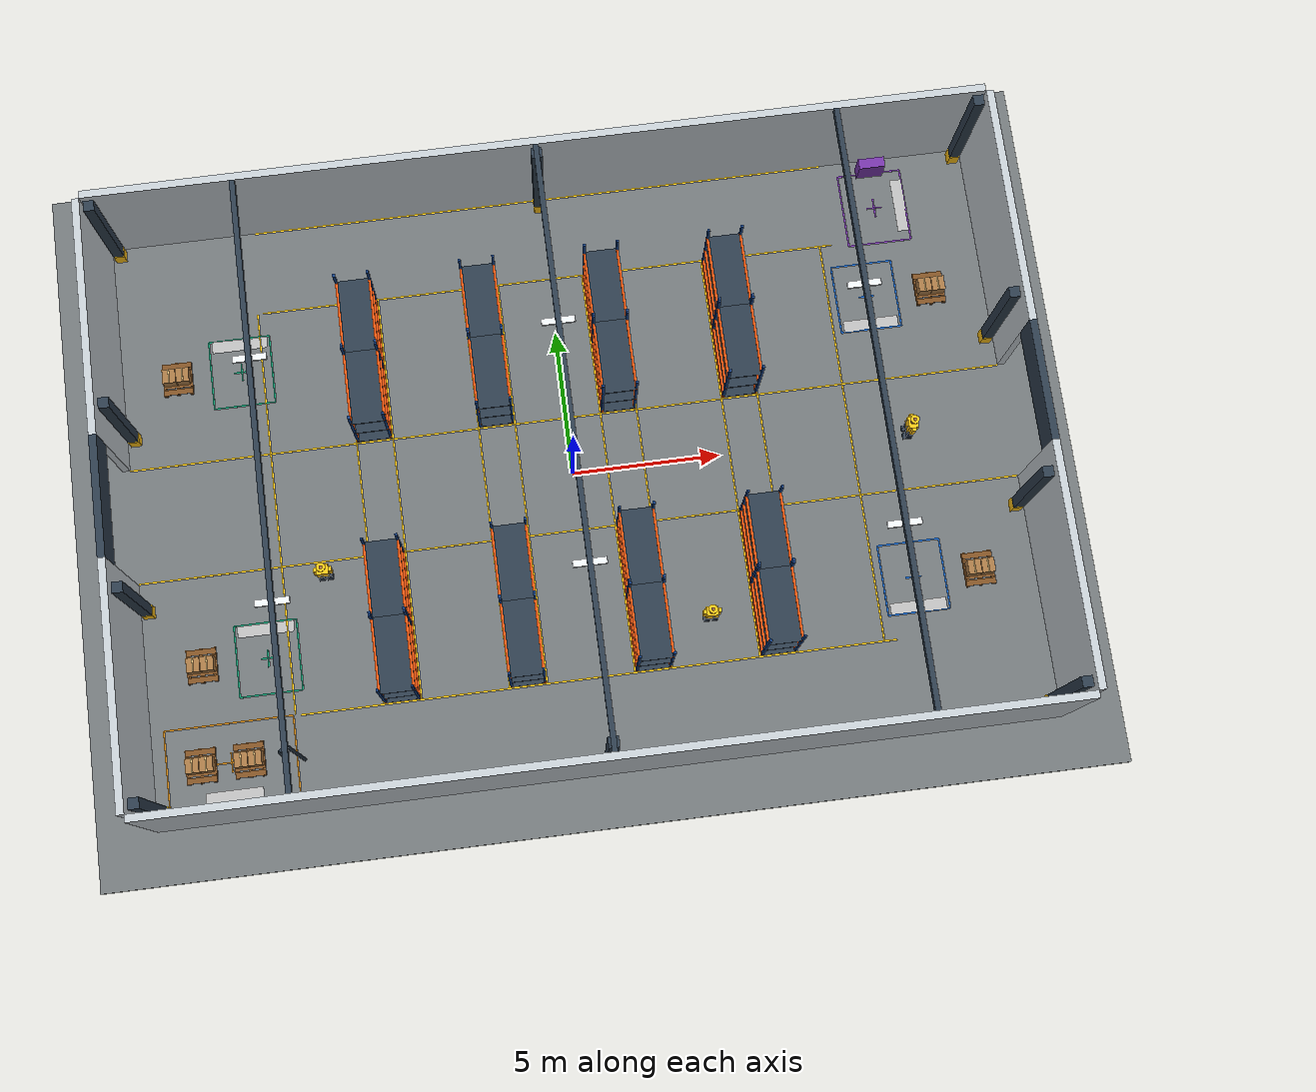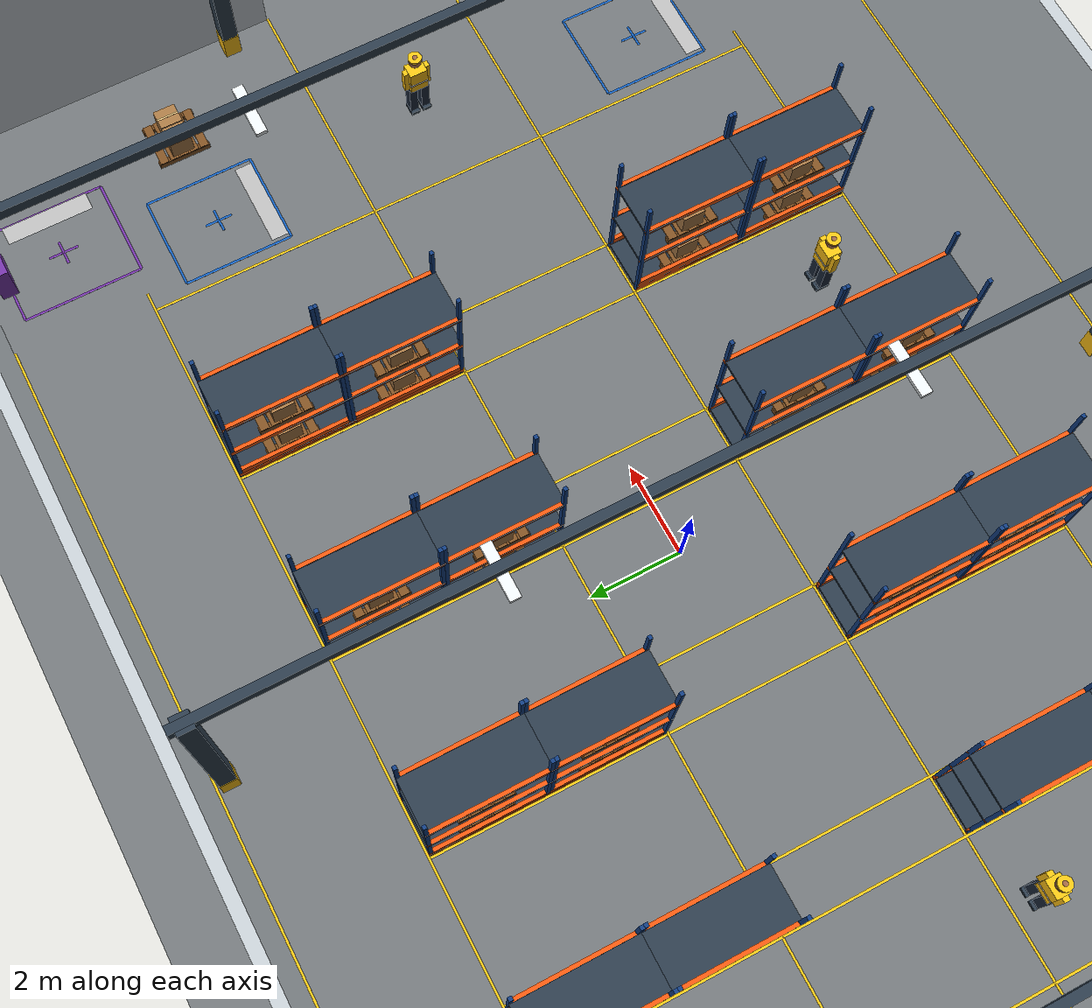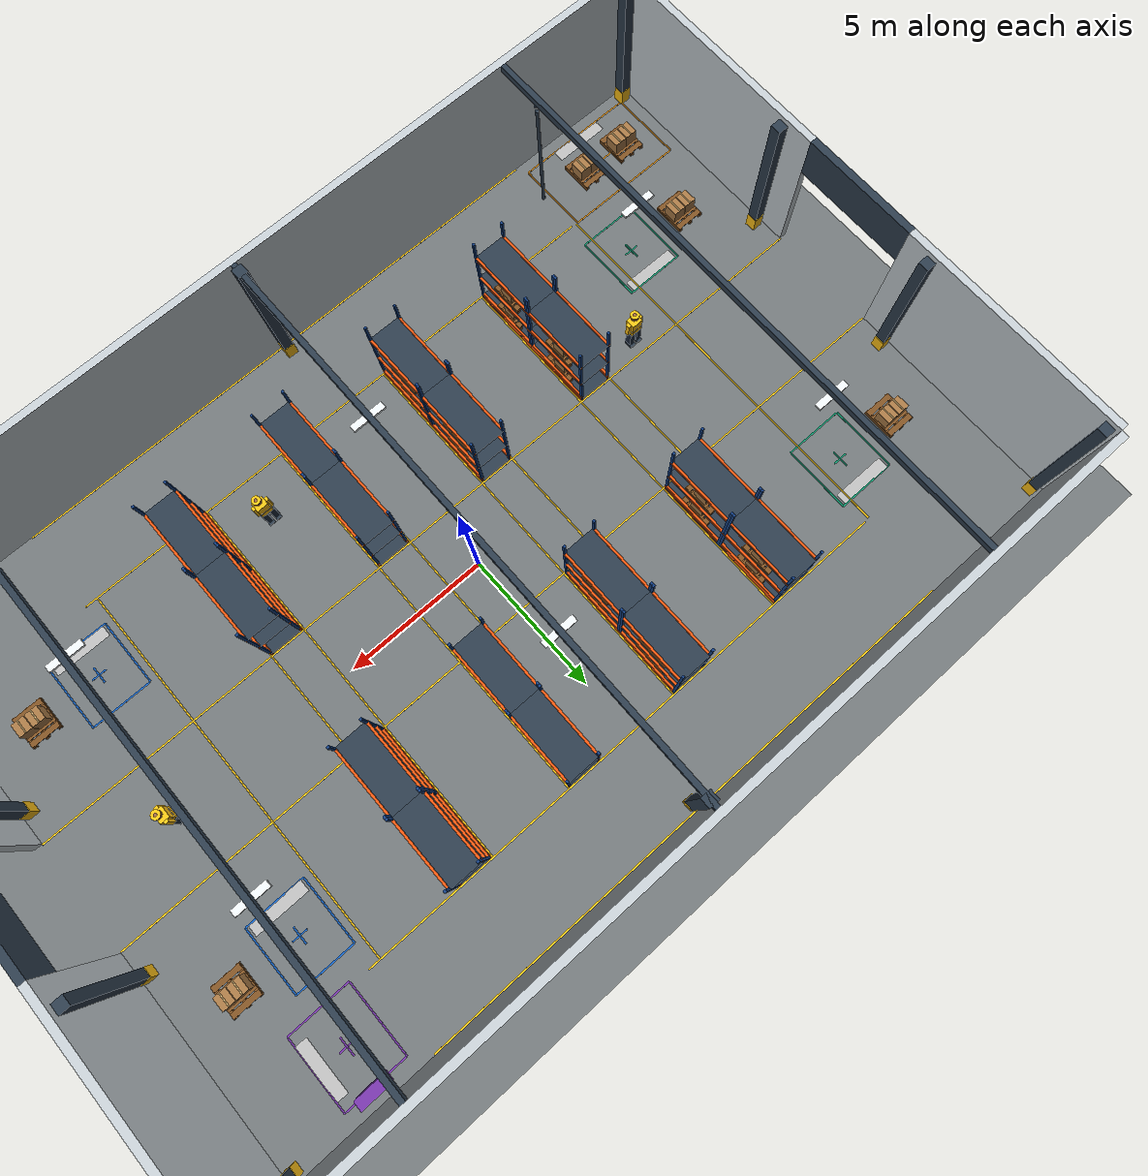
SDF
<?xml version="1.0"?>
<sdf version="1.9">
  <world name="warehouse">
    <gravity>0 0 -9.81</gravity>
    <physics name="physics" type="ignored">
      <max_step_size>0.001</max_step_size>
      <real_time_factor>1</real_time_factor>
    </physics>
    <plugin filename="gz-sim-physics-system" name="gz::sim::systems::Physics" />
    <plugin filename="gz-sim-user-commands-system" name="gz::sim::systems::UserCommands" />
    <plugin filename="gz-sim-scene-broadcaster-system" name="gz::sim::systems::SceneBroadcaster" />
    <plugin filename="gz-sim-sensors-system" name="gz::sim::systems::Sensors">
      <render_engine>ogre2</render_engine>
    </plugin>
    <plugin filename="gz-sim-imu-system" name="gz::sim::systems::Imu" />
    <plugin filename="gz-sim-contact-system" name="gz::sim::systems::Contact" />
    <scene>
      <ambient>0.42 0.43 0.45 1</ambient>
      <background>0.17 0.21 0.26 1</background>
      <shadows>true</shadows>
    </scene>
    <light name="daylight" type="directional">
      <pose>0 0 10 0 0 0</pose>
      <direction>-0.4 0.2 -1</direction>
      <diffuse>0.65 0.63 0.59 1</diffuse>
      <specular>0.1 0.1 0.1 1</specular>
      <cast_shadows>true</cast_shadows>
    </light>
    <light name="overhead_0" type="point">
      <pose>-10 -4 4.65 0 0 0</pose>
      <diffuse>0.55 0.57 0.6 1</diffuse>
      <cast_shadows>false</cast_shadows>
      <attenuation>
        <range>11</range>
        <constant>1</constant>
        <linear>0.035</linear>
        <quadratic>0.012</quadratic>
      </attenuation>
    </light>
    <light name="overhead_1" type="point">
      <pose>0 -4 4.65 0 0 0</pose>
      <diffuse>0.55 0.57 0.6 1</diffuse>
      <cast_shadows>false</cast_shadows>
      <attenuation>
        <range>11</range>
        <constant>1</constant>
        <linear>0.035</linear>
        <quadratic>0.012</quadratic>
      </attenuation>
    </light>
    <light name="overhead_2" type="point">
      <pose>10 -4 4.65 0 0 0</pose>
      <diffuse>0.55 0.57 0.6 1</diffuse>
      <cast_shadows>false</cast_shadows>
      <attenuation>
        <range>11</range>
        <constant>1</constant>
        <linear>0.035</linear>
        <quadratic>0.012</quadratic>
      </attenuation>
    </light>
    <light name="overhead_3" type="point">
      <pose>-10 4 4.65 0 0 0</pose>
      <diffuse>0.55 0.57 0.6 1</diffuse>
      <cast_shadows>false</cast_shadows>
      <attenuation>
        <range>11</range>
        <constant>1</constant>
        <linear>0.035</linear>
        <quadratic>0.012</quadratic>
      </attenuation>
    </light>
    <light name="overhead_4" type="point">
      <pose>0 4 4.65 0 0 0</pose>
      <diffuse>0.55 0.57 0.6 1</diffuse>
      <cast_shadows>false</cast_shadows>
      <attenuation>
        <range>11</range>
        <constant>1</constant>
        <linear>0.035</linear>
        <quadratic>0.012</quadratic>
      </attenuation>
    </light>
    <light name="overhead_5" type="point">
      <pose>10 4 4.65 0 0 0</pose>
      <diffuse>0.55 0.57 0.6 1</diffuse>
      <cast_shadows>false</cast_shadows>
      <attenuation>
        <range>11</range>
        <constant>1</constant>
        <linear>0.035</linear>
        <quadratic>0.012</quadratic>
      </attenuation>
    </light>
    <include>
      <uri>model://wh_building</uri>
      <name>warehouse_structure</name>
      <pose>0 0 0 0 0 0</pose>
    </include>
    <model name="warehouse_camera_01">
      <static>true</static>
      <pose>-10 -8.5 0 0 0 0</pose>
      <link name="mount">
        <visual name="mast_visual">
          <pose>0 0 2.2 0 0 0</pose>
          <geometry>
            <cylinder>
              <radius>0.055</radius>
              <length>4.4</length>
            </cylinder>
          </geometry>
          <material>
            <ambient>0.17 0.23 0.29 1</ambient>
            <diffuse>0.17 0.23 0.29 1</diffuse>
            <specular>0.06 0.06 0.06 1</specular>
          </material>
        </visual>
        <collision name="mast_collision">
          <pose>0 0 2.2 0 0 0</pose>
          <geometry>
            <cylinder>
              <radius>0.055</radius>
              <length>4.4</length>
            </cylinder>
          </geometry>
        </collision>
        <visual name="housing_visual">
          <pose>-0.125276387432 -0.142606210009 4.51121733507 0 0.53 0.85</pose>
          <geometry>
            <box>
              <size>0.24 0.16 0.16</size>
            </box>
          </geometry>
          <material>
            <ambient>0.17 0.23 0.29 1</ambient>
            <diffuse>0.17 0.23 0.29 1</diffuse>
            <specular>0.06 0.06 0.06 1</specular>
          </material>
        </visual>
        <collision name="housing_collision">
          <pose>-0.125276387432 -0.142606210009 4.51121733507 0 0.53 0.85</pose>
          <geometry>
            <box>
              <size>0.24 0.16 0.16</size>
            </box>
          </geometry>
        </collision>
        <sensor name="camera" type="camera">
          <pose>0 0 4.4 0 0.53 0.85</pose>
          <topic>/warehouse/camera_01/image</topic>
          <always_on>true</always_on>
          <update_rate>10</update_rate>
          <camera>
            <horizontal_fov>1.4</horizontal_fov>
            <image>
              <width>640</width>
              <height>480</height>
              <format>R8G8B8</format>
            </image>
            <clip>
              <near>0.1</near>
              <far>40</far>
            </clip>
            <optical_frame_id>warehouse_camera_01_optical_frame</optical_frame_id>
          </camera>
        </sensor>
      </link>
    </model>
    <model name="human_01">
      <static>false</static>
      <pose>-8.7 -2.5 0 0 0 1.57079632679</pose>
      <link name="body">
        <inertial>
          <pose>0 0 0.25 0 0 0</pose>
          <mass>80</mass>
          <inertia>
            <ixx>12</ixx>
            <iyy>12</iyy>
            <izz>3.2</izz>
            <ixy>0</ixy>
            <ixz>0</ixz>
            <iyz>0</iyz>
          </inertia>
        </inertial>
        <collision name="body_collision">
          <pose>0 0 0.875 0 0 0</pose>
          <geometry>
            <cylinder>
              <radius>0.28</radius>
              <length>1.75</length>
            </cylinder>
          </geometry>
          <surface>
            <friction>
              <ode>
                <mu>0.05</mu>
                <mu2>0.05</mu2>
              </ode>
            </friction>
          </surface>
        </collision>
        <visual name="leg_-1_visual">
          <pose>0 -0.1344 0.4025 0 0 0</pose>
          <geometry>
            <box>
              <size>0.224 0.182 0.805</size>
            </box>
          </geometry>
          <material>
            <ambient>0.1 0.15 0.22 1</ambient>
            <diffuse>0.1 0.15 0.22 1</diffuse>
            <specular>0.06 0.06 0.06 1</specular>
          </material>
        </visual>
        <visual name="shoe_-1_visual">
          <pose>0.028 -0.1344 0.039375 0 0 0</pose>
          <geometry>
            <box>
              <size>0.308 0.196 0.07875</size>
            </box>
          </geometry>
          <material>
            <ambient>0.17 0.23 0.29 1</ambient>
            <diffuse>0.17 0.23 0.29 1</diffuse>
            <specular>0.06 0.06 0.06 1</specular>
          </material>
        </visual>
        <visual name="arm_-1_visual">
          <pose>0 -0.2324 1.085 0 0 0</pose>
          <geometry>
            <box>
              <size>0.1344 0.126 0.5425</size>
            </box>
          </geometry>
          <material>
            <ambient>1 0.76 0.08 1</ambient>
            <diffuse>1 0.76 0.08 1</diffuse>
            <specular>0.06 0.06 0.06 1</specular>
          </material>
        </visual>
        <visual name="leg_1_visual">
          <pose>0 0.1344 0.4025 0 0 0</pose>
          <geometry>
            <box>
              <size>0.224 0.182 0.805</size>
            </box>
          </geometry>
          <material>
            <ambient>0.1 0.15 0.22 1</ambient>
            <diffuse>0.1 0.15 0.22 1</diffuse>
            <specular>0.06 0.06 0.06 1</specular>
          </material>
        </visual>
        <visual name="shoe_1_visual">
          <pose>0.028 0.1344 0.039375 0 0 0</pose>
          <geometry>
            <box>
              <size>0.308 0.196 0.07875</size>
            </box>
          </geometry>
          <material>
            <ambient>0.17 0.23 0.29 1</ambient>
            <diffuse>0.17 0.23 0.29 1</diffuse>
            <specular>0.06 0.06 0.06 1</specular>
          </material>
        </visual>
        <visual name="arm_1_visual">
          <pose>0 0.2324 1.085 0 0 0</pose>
          <geometry>
            <box>
              <size>0.1344 0.126 0.5425</size>
            </box>
          </geometry>
          <material>
            <ambient>1 0.76 0.08 1</ambient>
            <diffuse>1 0.76 0.08 1</diffuse>
            <specular>0.06 0.06 0.06 1</specular>
          </material>
        </visual>
        <visual name="torso_visual">
          <pose>0 0 1.085 0 0 0</pose>
          <geometry>
            <box>
              <size>0.322 0.392 0.56</size>
            </box>
          </geometry>
          <material>
            <ambient>1 0.76 0.08 1</ambient>
            <diffuse>1 0.76 0.08 1</diffuse>
            <specular>0.06 0.06 0.06 1</specular>
          </material>
        </visual>
        <visual name="reflective_band_visual">
          <pose>0 0 1.015 0 0 0</pose>
          <geometry>
            <box>
              <size>0.3248 0.3948 0.049</size>
            </box>
          </geometry>
          <material>
            <ambient>0.91 0.93 0.94 1</ambient>
            <diffuse>0.91 0.93 0.94 1</diffuse>
            <specular>0.06 0.06 0.06 1</specular>
          </material>
        </visual>
        <visual name="head_visual">
          <pose>0 0 1.61 0 0 0</pose>
          <geometry>
            <sphere>
              <radius>0.14</radius>
            </sphere>
          </geometry>
          <material>
            <ambient>0.62 0.4 0.26 1</ambient>
            <diffuse>0.62 0.4 0.26 1</diffuse>
            <specular>0.06 0.06 0.06 1</specular>
          </material>
        </visual>
        <visual name="helmet_visual">
          <pose>0 0 1.7164 0 0 0</pose>
          <geometry>
            <cylinder>
              <radius>0.1484</radius>
              <length>0.042</length>
            </cylinder>
          </geometry>
          <material>
            <ambient>1 0.76 0.08 1</ambient>
            <diffuse>1 0.76 0.08 1</diffuse>
            <specular>0.06 0.06 0.06 1</specular>
          </material>
        </visual>
        <sensor name="human_01_contact" type="contact">
          <always_on>true</always_on>
          <update_rate>20</update_rate>
          <topic>/warehouse/contacts/human_01</topic>
          <contact>
            <collision>body_collision</collision>
            <topic>/warehouse/contacts/human_01</topic>
          </contact>
        </sensor>
      </link>
      <plugin filename="gz-sim-trajectory-follower-system" name="gz::sim::systems::TrajectoryFollower">
        <link_name>body</link_name>
        <loop>true</loop>
        <force>46</force>
        <torque>15</torque>
        <range_tolerance>0.3</range_tolerance>
        <bearing_tolerance>5</bearing_tolerance>
        <zero_vel_on_bearing_reached>true</zero_vel_on_bearing_reached>
        <waypoints>
          <waypoint>-8.7 2.5</waypoint>
          <waypoint>-8.7 -2.5</waypoint>
        </waypoints>
      </plugin>
    </model>
    <model name="human_02">
      <static>false</static>
      <pose>3.9 -5.5 0 0 0 1.57079632679</pose>
      <link name="body">
        <inertial>
          <pose>0 0 0.25 0 0 0</pose>
          <mass>80</mass>
          <inertia>
            <ixx>12</ixx>
            <iyy>12</iyy>
            <izz>3.2</izz>
            <ixy>0</ixy>
            <ixz>0</ixz>
            <iyz>0</iyz>
          </inertia>
        </inertial>
        <collision name="body_collision">
          <pose>0 0 0.875 0 0 0</pose>
          <geometry>
            <cylinder>
              <radius>0.28</radius>
              <length>1.75</length>
            </cylinder>
          </geometry>
          <surface>
            <friction>
              <ode>
                <mu>0.05</mu>
                <mu2>0.05</mu2>
              </ode>
            </friction>
          </surface>
        </collision>
        <visual name="leg_-1_visual">
          <pose>0 -0.1344 0.4025 0 0 0</pose>
          <geometry>
            <box>
              <size>0.224 0.182 0.805</size>
            </box>
          </geometry>
          <material>
            <ambient>0.1 0.15 0.22 1</ambient>
            <diffuse>0.1 0.15 0.22 1</diffuse>
            <specular>0.06 0.06 0.06 1</specular>
          </material>
        </visual>
        <visual name="shoe_-1_visual">
          <pose>0.028 -0.1344 0.039375 0 0 0</pose>
          <geometry>
            <box>
              <size>0.308 0.196 0.07875</size>
            </box>
          </geometry>
          <material>
            <ambient>0.17 0.23 0.29 1</ambient>
            <diffuse>0.17 0.23 0.29 1</diffuse>
            <specular>0.06 0.06 0.06 1</specular>
          </material>
        </visual>
        <visual name="arm_-1_visual">
          <pose>0 -0.2324 1.085 0 0 0</pose>
          <geometry>
            <box>
              <size>0.1344 0.126 0.5425</size>
            </box>
          </geometry>
          <material>
            <ambient>1 0.76 0.08 1</ambient>
            <diffuse>1 0.76 0.08 1</diffuse>
            <specular>0.06 0.06 0.06 1</specular>
          </material>
        </visual>
        <visual name="leg_1_visual">
          <pose>0 0.1344 0.4025 0 0 0</pose>
          <geometry>
            <box>
              <size>0.224 0.182 0.805</size>
            </box>
          </geometry>
          <material>
            <ambient>0.1 0.15 0.22 1</ambient>
            <diffuse>0.1 0.15 0.22 1</diffuse>
            <specular>0.06 0.06 0.06 1</specular>
          </material>
        </visual>
        <visual name="shoe_1_visual">
          <pose>0.028 0.1344 0.039375 0 0 0</pose>
          <geometry>
            <box>
              <size>0.308 0.196 0.07875</size>
            </box>
          </geometry>
          <material>
            <ambient>0.17 0.23 0.29 1</ambient>
            <diffuse>0.17 0.23 0.29 1</diffuse>
            <specular>0.06 0.06 0.06 1</specular>
          </material>
        </visual>
        <visual name="arm_1_visual">
          <pose>0 0.2324 1.085 0 0 0</pose>
          <geometry>
            <box>
              <size>0.1344 0.126 0.5425</size>
            </box>
          </geometry>
          <material>
            <ambient>1 0.76 0.08 1</ambient>
            <diffuse>1 0.76 0.08 1</diffuse>
            <specular>0.06 0.06 0.06 1</specular>
          </material>
        </visual>
        <visual name="torso_visual">
          <pose>0 0 1.085 0 0 0</pose>
          <geometry>
            <box>
              <size>0.322 0.392 0.56</size>
            </box>
          </geometry>
          <material>
            <ambient>1 0.76 0.08 1</ambient>
            <diffuse>1 0.76 0.08 1</diffuse>
            <specular>0.06 0.06 0.06 1</specular>
          </material>
        </visual>
        <visual name="reflective_band_visual">
          <pose>0 0 1.015 0 0 0</pose>
          <geometry>
            <box>
              <size>0.3248 0.3948 0.049</size>
            </box>
          </geometry>
          <material>
            <ambient>0.91 0.93 0.94 1</ambient>
            <diffuse>0.91 0.93 0.94 1</diffuse>
            <specular>0.06 0.06 0.06 1</specular>
          </material>
        </visual>
        <visual name="head_visual">
          <pose>0 0 1.61 0 0 0</pose>
          <geometry>
            <sphere>
              <radius>0.14</radius>
            </sphere>
          </geometry>
          <material>
            <ambient>0.62 0.4 0.26 1</ambient>
            <diffuse>0.62 0.4 0.26 1</diffuse>
            <specular>0.06 0.06 0.06 1</specular>
          </material>
        </visual>
        <visual name="helmet_visual">
          <pose>0 0 1.7164 0 0 0</pose>
          <geometry>
            <cylinder>
              <radius>0.1484</radius>
              <length>0.042</length>
            </cylinder>
          </geometry>
          <material>
            <ambient>1 0.76 0.08 1</ambient>
            <diffuse>1 0.76 0.08 1</diffuse>
            <specular>0.06 0.06 0.06 1</specular>
          </material>
        </visual>
        <sensor name="human_02_contact" type="contact">
          <always_on>true</always_on>
          <update_rate>20</update_rate>
          <topic>/warehouse/contacts/human_02</topic>
          <contact>
            <collision>body_collision</collision>
            <topic>/warehouse/contacts/human_02</topic>
          </contact>
        </sensor>
      </link>
      <plugin filename="gz-sim-trajectory-follower-system" name="gz::sim::systems::TrajectoryFollower">
        <link_name>body</link_name>
        <loop>true</loop>
        <force>46</force>
        <torque>15</torque>
        <range_tolerance>0.3</range_tolerance>
        <bearing_tolerance>5</bearing_tolerance>
        <zero_vel_on_bearing_reached>true</zero_vel_on_bearing_reached>
        <waypoints>
          <waypoint>3.9 5.5</waypoint>
          <waypoint>3.9 -5.5</waypoint>
        </waypoints>
      </plugin>
    </model>
    <model name="human_03">
      <static>true</static>
      <pose>11.5 0 0 0 0 3.14159265359</pose>
      <link name="body">
        <inertial>
          <pose>0 0 0.25 0 0 0</pose>
          <mass>80</mass>
          <inertia>
            <ixx>12</ixx>
            <iyy>12</iyy>
            <izz>3.2</izz>
            <ixy>0</ixy>
            <ixz>0</ixz>
            <iyz>0</iyz>
          </inertia>
        </inertial>
        <collision name="body_collision">
          <pose>0 0 0.875 0 0 0</pose>
          <geometry>
            <cylinder>
              <radius>0.28</radius>
              <length>1.75</length>
            </cylinder>
          </geometry>
          <surface>
            <friction>
              <ode>
                <mu>0.05</mu>
                <mu2>0.05</mu2>
              </ode>
            </friction>
          </surface>
        </collision>
        <visual name="leg_-1_visual">
          <pose>0 -0.1344 0.4025 0 0 0</pose>
          <geometry>
            <box>
              <size>0.224 0.182 0.805</size>
            </box>
          </geometry>
          <material>
            <ambient>0.1 0.15 0.22 1</ambient>
            <diffuse>0.1 0.15 0.22 1</diffuse>
            <specular>0.06 0.06 0.06 1</specular>
          </material>
        </visual>
        <visual name="shoe_-1_visual">
          <pose>0.028 -0.1344 0.039375 0 0 0</pose>
          <geometry>
            <box>
              <size>0.308 0.196 0.07875</size>
            </box>
          </geometry>
          <material>
            <ambient>0.17 0.23 0.29 1</ambient>
            <diffuse>0.17 0.23 0.29 1</diffuse>
            <specular>0.06 0.06 0.06 1</specular>
          </material>
        </visual>
        <visual name="arm_-1_visual">
          <pose>0 -0.2324 1.085 0 0 0</pose>
          <geometry>
            <box>
              <size>0.1344 0.126 0.5425</size>
            </box>
          </geometry>
          <material>
            <ambient>1 0.76 0.08 1</ambient>
            <diffuse>1 0.76 0.08 1</diffuse>
            <specular>0.06 0.06 0.06 1</specular>
          </material>
        </visual>
        <visual name="leg_1_visual">
          <pose>0 0.1344 0.4025 0 0 0</pose>
          <geometry>
            <box>
              <size>0.224 0.182 0.805</size>
            </box>
          </geometry>
          <material>
            <ambient>0.1 0.15 0.22 1</ambient>
            <diffuse>0.1 0.15 0.22 1</diffuse>
            <specular>0.06 0.06 0.06 1</specular>
          </material>
        </visual>
        <visual name="shoe_1_visual">
          <pose>0.028 0.1344 0.039375 0 0 0</pose>
          <geometry>
            <box>
              <size>0.308 0.196 0.07875</size>
            </box>
          </geometry>
          <material>
            <ambient>0.17 0.23 0.29 1</ambient>
            <diffuse>0.17 0.23 0.29 1</diffuse>
            <specular>0.06 0.06 0.06 1</specular>
          </material>
        </visual>
        <visual name="arm_1_visual">
          <pose>0 0.2324 1.085 0 0 0</pose>
          <geometry>
            <box>
              <size>0.1344 0.126 0.5425</size>
            </box>
          </geometry>
          <material>
            <ambient>1 0.76 0.08 1</ambient>
            <diffuse>1 0.76 0.08 1</diffuse>
            <specular>0.06 0.06 0.06 1</specular>
          </material>
        </visual>
        <visual name="torso_visual">
          <pose>0 0 1.085 0 0 0</pose>
          <geometry>
            <box>
              <size>0.322 0.392 0.56</size>
            </box>
          </geometry>
          <material>
            <ambient>1 0.76 0.08 1</ambient>
            <diffuse>1 0.76 0.08 1</diffuse>
            <specular>0.06 0.06 0.06 1</specular>
          </material>
        </visual>
        <visual name="reflective_band_visual">
          <pose>0 0 1.015 0 0 0</pose>
          <geometry>
            <box>
              <size>0.3248 0.3948 0.049</size>
            </box>
          </geometry>
          <material>
            <ambient>0.91 0.93 0.94 1</ambient>
            <diffuse>0.91 0.93 0.94 1</diffuse>
            <specular>0.06 0.06 0.06 1</specular>
          </material>
        </visual>
        <visual name="head_visual">
          <pose>0 0 1.61 0 0 0</pose>
          <geometry>
            <sphere>
              <radius>0.14</radius>
            </sphere>
          </geometry>
          <material>
            <ambient>0.62 0.4 0.26 1</ambient>
            <diffuse>0.62 0.4 0.26 1</diffuse>
            <specular>0.06 0.06 0.06 1</specular>
          </material>
        </visual>
        <visual name="helmet_visual">
          <pose>0 0 1.7164 0 0 0</pose>
          <geometry>
            <cylinder>
              <radius>0.1484</radius>
              <length>0.042</length>
            </cylinder>
          </geometry>
          <material>
            <ambient>1 0.76 0.08 1</ambient>
            <diffuse>1 0.76 0.08 1</diffuse>
            <specular>0.06 0.06 0.06 1</specular>
          </material>
        </visual>
        <sensor name="human_03_contact" type="contact">
          <always_on>true</always_on>
          <update_rate>20</update_rate>
          <topic>/warehouse/contacts/human_03</topic>
          <contact>
            <collision>body_collision</collision>
            <topic>/warehouse/contacts/human_03</topic>
          </contact>
        </sensor>
      </link>
    </model>
  </world>
</sdf>

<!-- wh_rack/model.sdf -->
<sdf version="1.9">
  <model name="wh_rack">
    <static>true</static>
    <link name="structure">
      <visual name="post_0_0_visual">
        <pose>-0.56 -1.21 1.6 0 0 0</pose>
        <geometry>
          <box>
            <size>0.08 0.08 3.2</size>
          </box>
        </geometry>
        <material>
          <ambient>0.07 0.24 0.5 1</ambient>
          <diffuse>0.07 0.24 0.5 1</diffuse>
          <specular>0.06 0.06 0.06 1</specular>
        </material>
      </visual>
      <collision name="post_0_0_collision">
        <pose>-0.56 -1.21 1.6 0 0 0</pose>
        <geometry>
          <box>
            <size>0.08 0.08 3.2</size>
          </box>
        </geometry>
      </collision>
      <visual name="post_0_1_visual">
        <pose>-0.56 1.21 1.6 0 0 0</pose>
        <geometry>
          <box>
            <size>0.08 0.08 3.2</size>
          </box>
        </geometry>
        <material>
          <ambient>0.07 0.24 0.5 1</ambient>
          <diffuse>0.07 0.24 0.5 1</diffuse>
          <specular>0.06 0.06 0.06 1</specular>
        </material>
      </visual>
      <collision name="post_0_1_collision">
        <pose>-0.56 1.21 1.6 0 0 0</pose>
        <geometry>
          <box>
            <size>0.08 0.08 3.2</size>
          </box>
        </geometry>
      </collision>
      <visual name="kickrail_0_visual">
        <pose>-0.56 0 0.16 0 0 0</pose>
        <geometry>
          <box>
            <size>0.08 2.5 0.32</size>
          </box>
        </geometry>
        <material>
          <ambient>0.94 0.34 0.06 1</ambient>
          <diffuse>0.94 0.34 0.06 1</diffuse>
          <specular>0.06 0.06 0.06 1</specular>
        </material>
      </visual>
      <collision name="kickrail_0_collision">
        <pose>-0.56 0 0.16 0 0 0</pose>
        <geometry>
          <box>
            <size>0.08 2.5 0.32</size>
          </box>
        </geometry>
      </collision>
      <visual name="post_1_0_visual">
        <pose>0.56 -1.21 1.6 0 0 0</pose>
        <geometry>
          <box>
            <size>0.08 0.08 3.2</size>
          </box>
        </geometry>
        <material>
          <ambient>0.07 0.24 0.5 1</ambient>
          <diffuse>0.07 0.24 0.5 1</diffuse>
          <specular>0.06 0.06 0.06 1</specular>
        </material>
      </visual>
      <collision name="post_1_0_collision">
        <pose>0.56 -1.21 1.6 0 0 0</pose>
        <geometry>
          <box>
            <size>0.08 0.08 3.2</size>
          </box>
        </geometry>
      </collision>
      <visual name="post_1_1_visual">
        <pose>0.56 1.21 1.6 0 0 0</pose>
        <geometry>
          <box>
            <size>0.08 0.08 3.2</size>
          </box>
        </geometry>
        <material>
          <ambient>0.07 0.24 0.5 1</ambient>
          <diffuse>0.07 0.24 0.5 1</diffuse>
          <specular>0.06 0.06 0.06 1</specular>
        </material>
      </visual>
      <collision name="post_1_1_collision">
        <pose>0.56 1.21 1.6 0 0 0</pose>
        <geometry>
          <box>
            <size>0.08 0.08 3.2</size>
          </box>
        </geometry>
      </collision>
      <visual name="kickrail_1_visual">
        <pose>0.56 0 0.16 0 0 0</pose>
        <geometry>
          <box>
            <size>0.08 2.5 0.32</size>
          </box>
        </geometry>
        <material>
          <ambient>0.94 0.34 0.06 1</ambient>
          <diffuse>0.94 0.34 0.06 1</diffuse>
          <specular>0.06 0.06 0.06 1</specular>
        </material>
      </visual>
      <collision name="kickrail_1_collision">
        <pose>0.56 0 0.16 0 0 0</pose>
        <geometry>
          <box>
            <size>0.08 2.5 0.32</size>
          </box>
        </geometry>
      </collision>
      <visual name="shelf_0_visual">
        <pose>0 0 0.12 0 0 0</pose>
        <geometry>
          <box>
            <size>1.2 2.5 0.06</size>
          </box>
        </geometry>
        <material>
          <ambient>0.17 0.23 0.29 1</ambient>
          <diffuse>0.17 0.23 0.29 1</diffuse>
          <specular>0.06 0.06 0.06 1</specular>
        </material>
      </visual>
      <collision name="shelf_0_collision">
        <pose>0 0 0.12 0 0 0</pose>
        <geometry>
          <box>
            <size>1.2 2.5 0.06</size>
          </box>
        </geometry>
      </collision>
      <visual name="beam_0_0_visual">
        <pose>-0.56 0 0.12 0 0 0</pose>
        <geometry>
          <box>
            <size>0.08 2.5 0.12</size>
          </box>
        </geometry>
        <material>
          <ambient>0.94 0.34 0.06 1</ambient>
          <diffuse>0.94 0.34 0.06 1</diffuse>
          <specular>0.06 0.06 0.06 1</specular>
        </material>
      </visual>
      <visual name="beam_0_1_visual">
        <pose>0.56 0 0.12 0 0 0</pose>
        <geometry>
          <box>
            <size>0.08 2.5 0.12</size>
          </box>
        </geometry>
        <material>
          <ambient>0.94 0.34 0.06 1</ambient>
          <diffuse>0.94 0.34 0.06 1</diffuse>
          <specular>0.06 0.06 0.06 1</specular>
        </material>
      </visual>
      <visual name="shelf_1_visual">
        <pose>0 0 1.25 0 0 0</pose>
        <geometry>
          <box>
            <size>1.2 2.5 0.06</size>
          </box>
        </geometry>
        <material>
          <ambient>0.17 0.23 0.29 1</ambient>
          <diffuse>0.17 0.23 0.29 1</diffuse>
          <specular>0.06 0.06 0.06 1</specular>
        </material>
      </visual>
      <collision name="shelf_1_collision">
        <pose>0 0 1.25 0 0 0</pose>
        <geometry>
          <box>
            <size>1.2 2.5 0.06</size>
          </box>
        </geometry>
      </collision>
      <visual name="beam_1_0_visual">
        <pose>-0.56 0 1.25 0 0 0</pose>
        <geometry>
          <box>
            <size>0.08 2.5 0.12</size>
          </box>
        </geometry>
        <material>
          <ambient>0.94 0.34 0.06 1</ambient>
          <diffuse>0.94 0.34 0.06 1</diffuse>
          <specular>0.06 0.06 0.06 1</specular>
        </material>
      </visual>
      <visual name="beam_1_1_visual">
        <pose>0.56 0 1.25 0 0 0</pose>
        <geometry>
          <box>
            <size>0.08 2.5 0.12</size>
          </box>
        </geometry>
        <material>
          <ambient>0.94 0.34 0.06 1</ambient>
          <diffuse>0.94 0.34 0.06 1</diffuse>
          <specular>0.06 0.06 0.06 1</specular>
        </material>
      </visual>
      <visual name="shelf_2_visual">
        <pose>0 0 2.4 0 0 0</pose>
        <geometry>
          <box>
            <size>1.2 2.5 0.06</size>
          </box>
        </geometry>
        <material>
          <ambient>0.17 0.23 0.29 1</ambient>
          <diffuse>0.17 0.23 0.29 1</diffuse>
          <specular>0.06 0.06 0.06 1</specular>
        </material>
      </visual>
      <collision name="shelf_2_collision">
        <pose>0 0 2.4 0 0 0</pose>
        <geometry>
          <box>
            <size>1.2 2.5 0.06</size>
          </box>
        </geometry>
      </collision>
      <visual name="beam_2_0_visual">
        <pose>-0.56 0 2.4 0 0 0</pose>
        <geometry>
          <box>
            <size>0.08 2.5 0.12</size>
          </box>
        </geometry>
        <material>
          <ambient>0.94 0.34 0.06 1</ambient>
          <diffuse>0.94 0.34 0.06 1</diffuse>
          <specular>0.06 0.06 0.06 1</specular>
        </material>
      </visual>
      <visual name="beam_2_1_visual">
        <pose>0.56 0 2.4 0 0 0</pose>
        <geometry>
          <box>
            <size>0.08 2.5 0.12</size>
          </box>
        </geometry>
        <material>
          <ambient>0.94 0.34 0.06 1</ambient>
          <diffuse>0.94 0.34 0.06 1</diffuse>
          <specular>0.06 0.06 0.06 1</specular>
        </material>
      </visual>
    </link>
    <include>
      <uri>model://wh_loaded_pallet</uri>
      <name>load_0</name>
      <pose>0 0 0.15 0 0 0</pose>
    </include>
    <include>
      <uri>model://wh_loaded_pallet</uri>
      <name>load_1</name>
      <pose>0 0 1.28 0 0 0</pose>
    </include>
  </model>
</sdf>

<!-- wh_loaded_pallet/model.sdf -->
<sdf version="1.9">
  <model name="wh_loaded_pallet">
    <static>true</static>
    <include>
      <uri>model://wh_pallet</uri>
      <name>pallet</name>
      <pose>0 0 0 0 0 0</pose>
    </include>
    <include>
      <uri>model://wh_box</uri>
      <name>box_0_0_0</name>
      <pose>-0.23 0 0.15 0 0 0</pose>
    </include>
    <include>
      <uri>model://wh_box</uri>
      <name>box_0_1_0</name>
      <pose>0.23 0 0.15 0 0 0</pose>
    </include>
  </model>
</sdf>

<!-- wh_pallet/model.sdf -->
<sdf version="1.9">
  <model name="wh_pallet">
    <static>true</static>
    <link name="body">
      <collision name="pallet_collision">
        <pose>0 0 0.075 0 0 0</pose>
        <geometry>
          <box>
            <size>1 1.15 0.15</size>
          </box>
        </geometry>
      </collision>
      <visual name="slat_0_visual">
        <pose>0 -0.46 0.1375 0 0 0</pose>
        <geometry>
          <box>
            <size>1 0.184 0.025</size>
          </box>
        </geometry>
        <material>
          <ambient>0.5 0.32 0.14 1</ambient>
          <diffuse>0.5 0.32 0.14 1</diffuse>
          <specular>0.06 0.06 0.06 1</specular>
        </material>
      </visual>
      <visual name="slat_1_visual">
        <pose>0 -0.23 0.1375 0 0 0</pose>
        <geometry>
          <box>
            <size>1 0.184 0.025</size>
          </box>
        </geometry>
        <material>
          <ambient>0.5 0.32 0.14 1</ambient>
          <diffuse>0.5 0.32 0.14 1</diffuse>
          <specular>0.06 0.06 0.06 1</specular>
        </material>
      </visual>
      <visual name="slat_2_visual">
        <pose>0 0 0.1375 0 0 0</pose>
        <geometry>
          <box>
            <size>1 0.184 0.025</size>
          </box>
        </geometry>
        <material>
          <ambient>0.5 0.32 0.14 1</ambient>
          <diffuse>0.5 0.32 0.14 1</diffuse>
          <specular>0.06 0.06 0.06 1</specular>
        </material>
      </visual>
      <visual name="slat_3_visual">
        <pose>0 0.23 0.1375 0 0 0</pose>
        <geometry>
          <box>
            <size>1 0.184 0.025</size>
          </box>
        </geometry>
        <material>
          <ambient>0.5 0.32 0.14 1</ambient>
          <diffuse>0.5 0.32 0.14 1</diffuse>
          <specular>0.06 0.06 0.06 1</specular>
        </material>
      </visual>
      <visual name="slat_4_visual">
        <pose>0 0.46 0.1375 0 0 0</pose>
        <geometry>
          <box>
            <size>1 0.184 0.025</size>
          </box>
        </geometry>
        <material>
          <ambient>0.5 0.32 0.14 1</ambient>
          <diffuse>0.5 0.32 0.14 1</diffuse>
          <specular>0.06 0.06 0.06 1</specular>
        </material>
      </visual>
      <visual name="runner_0_visual">
        <pose>-0.44 0 0.0625 0 0 0</pose>
        <geometry>
          <box>
            <size>0.12 1.15 0.125</size>
          </box>
        </geometry>
        <material>
          <ambient>0.5 0.32 0.14 1</ambient>
          <diffuse>0.5 0.32 0.14 1</diffuse>
          <specular>0.06 0.06 0.06 1</specular>
        </material>
      </visual>
      <visual name="runner_1_visual">
        <pose>0 0 0.0625 0 0 0</pose>
        <geometry>
          <box>
            <size>0.12 1.15 0.125</size>
          </box>
        </geometry>
        <material>
          <ambient>0.5 0.32 0.14 1</ambient>
          <diffuse>0.5 0.32 0.14 1</diffuse>
          <specular>0.06 0.06 0.06 1</specular>
        </material>
      </visual>
      <visual name="runner_2_visual">
        <pose>0.44 0 0.0625 0 0 0</pose>
        <geometry>
          <box>
            <size>0.12 1.15 0.125</size>
          </box>
        </geometry>
        <material>
          <ambient>0.5 0.32 0.14 1</ambient>
          <diffuse>0.5 0.32 0.14 1</diffuse>
          <specular>0.06 0.06 0.06 1</specular>
        </material>
      </visual>
    </link>
  </model>
</sdf>

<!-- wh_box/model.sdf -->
<sdf version="1.9">
  <model name="wh_box">
    <static>true</static>
    <link name="body">
      <visual name="carton_visual">
        <pose>0 0 0.225 0 0 0</pose>
        <geometry>
          <box>
            <size>0.44 0.48 0.45</size>
          </box>
        </geometry>
        <material>
          <ambient>0.65 0.47 0.27 1</ambient>
          <diffuse>0.65 0.47 0.27 1</diffuse>
          <specular>0.06 0.06 0.06 1</specular>
        </material>
      </visual>
      <collision name="carton_collision">
        <pose>0 0 0.225 0 0 0</pose>
        <geometry>
          <box>
            <size>0.44 0.48 0.45</size>
          </box>
        </geometry>
      </collision>
      <visual name="tape_visual">
        <pose>0 0 0.45125 0 0 0</pose>
        <geometry>
          <box>
            <size>0.04 0.48 0.0025</size>
          </box>
        </geometry>
        <material>
          <ambient>0.86 0.73 0.47 1</ambient>
          <diffuse>0.86 0.73 0.47 1</diffuse>
          <specular>0.06 0.06 0.06 1</specular>
        </material>
      </visual>
    </link>
  </model>
</sdf>
